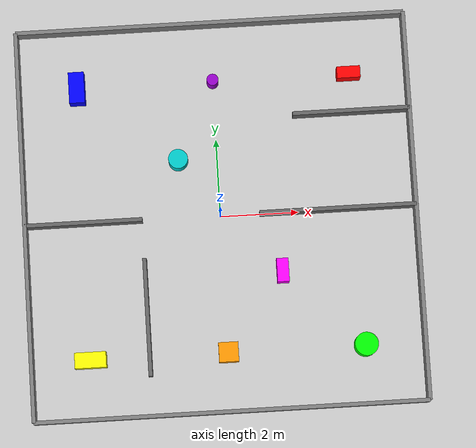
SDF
<?xml version="1.0"?>
<sdf version="1.6">
  <world name="slam_world">
    <physics type="ode">
      <max_step_size>0.001</max_step_size>
      <real_time_factor>1</real_time_factor>
    </physics>

    <include><uri>model://ground_plane</uri></include>
    <include><uri>model://sun</uri></include>

    <!-- 외곽 벽: 10 x 10 m                                           -->
    <model name="north_wall">
      <static>true</static>
      <pose>0 5.0 0.25 0 0 0</pose>
      <link name="link">
        <collision name="collision">
          <geometry><box><size>10.0 0.1 0.5</size></box></geometry>
        </collision>
        <visual name="visual">
          <geometry><box><size>10.0 0.1 0.5</size></box></geometry>
          <material><ambient>0.5 0.5 0.5 1</ambient></material>
        </visual>
      </link>
    </model>

    <model name="south_wall">
      <static>true</static>
      <pose>0 -5.0 0.25 0 0 0</pose>
      <link name="link">
        <collision name="collision">
          <geometry><box><size>10.0 0.1 0.5</size></box></geometry>
        </collision>
        <visual name="visual">
          <geometry><box><size>10.0 0.1 0.5</size></box></geometry>
          <material><ambient>0.5 0.5 0.5 1</ambient></material>
        </visual>
      </link>
    </model>

    <model name="east_wall">
      <static>true</static>
      <pose>5.0 0 0.25 0 0 0</pose>
      <link name="link">
        <collision name="collision">
          <geometry><box><size>0.1 10.0 0.5</size></box></geometry>
        </collision>
        <visual name="visual">
          <geometry><box><size>0.1 10.0 0.5</size></box></geometry>
          <material><ambient>0.5 0.5 0.5 1</ambient></material>
        </visual>
      </link>
    </model>

    <model name="west_wall">
      <static>true</static>
      <pose>-5.0 0 0.25 0 0 0</pose>
      <link name="link">
        <collision name="collision">
          <geometry><box><size>0.1 10.0 0.5</size></box></geometry>
        </collision>
        <visual name="visual">
          <geometry><box><size>0.1 10.0 0.5</size></box></geometry>
          <material><ambient>0.5 0.5 0.5 1</ambient></material>
        </visual>
      </link>
    </model>

    <!-- 낶부 칸막이: 중앙 가로벽 (중앙에 2m 통로)                      -->
    <model name="partition_left">
      <static>true</static>
      <pose>-3.5 0 0.25 0 0 0</pose>
      <link name="link">
        <collision name="collision">
          <geometry><box><size>3.0 0.1 0.5</size></box></geometry>
        </collision>
        <visual name="visual">
          <geometry><box><size>3.0 0.1 0.5</size></box></geometry>
          <material><ambient>0.4 0.4 0.4 1</ambient></material>
        </visual>
      </link>
    </model>

    <model name="partition_right">
      <static>true</static>
      <pose>3.0 0 0.25 0 0 0</pose>
      <link name="link">
        <collision name="collision">
          <geometry><box><size>4.0 0.1 0.5</size></box></geometry>
        </collision>
        <visual name="visual">
          <geometry><box><size>4.0 0.1 0.5</size></box></geometry>
          <material><ambient>0.4 0.4 0.4 1</ambient></material>
        </visual>
      </link>
    </model>

    <!-- 낶부 칸막이: 좌측 세로벽                                      -->
    <model name="room_divider_v">
      <static>true</static>
      <pose>-2.0 -2.5 0.25 0 0 0</pose>
      <link name="link">
        <collision name="collision">
          <geometry><box><size>0.1 3.0 0.5</size></box></geometry>
        </collision>
        <visual name="visual">
          <geometry><box><size>0.1 3.0 0.5</size></box></geometry>
          <material><ambient>0.4 0.4 0.4 1</ambient></material>
        </visual>
      </link>
    </model>

    <!-- 낶부 칸막이: 우측 상단 가로벽                                  -->
    <model name="room_divider_h">
      <static>true</static>
      <pose>3.5 2.5 0.25 0 0 0</pose>
      <link name="link">
        <collision name="collision">
          <geometry><box><size>3.0 0.1 0.5</size></box></geometry>
        </collision>
        <visual name="visual">
          <geometry><box><size>3.0 0.1 0.5</size></box></geometry>
          <material><ambient>0.4 0.4 0.4 1</ambient></material>
        </visual>
      </link>
    </model>

    <!-- 다양한 낶부 장애물 (박스 / 원통) — 비대칭 배치                 -->

    <model name="box_red">
      <pose>3.5 3.5 0.25 0 0 0</pose>
      <static>true</static>
      <link name="link">
        <collision name="collision">
          <geometry><box><size>0.6 0.3 0.5</size></box></geometry>
        </collision>
        <visual name="visual">
          <geometry><box><size>0.6 0.3 0.5</size></box></geometry>
          <material><ambient>1 0 0 1</ambient></material>
        </visual>
      </link>
    </model>

    <model name="box_blue">
      <pose>-3.5 3.5 0.25 0 0 0</pose>
      <static>true</static>
      <link name="link">
        <collision name="collision">
          <geometry><box><size>0.4 0.8 0.5</size></box></geometry>
        </collision>
        <visual name="visual">
          <geometry><box><size>0.4 0.8 0.5</size></box></geometry>
          <material><ambient>0 0 1 1</ambient></material>
        </visual>
      </link>
    </model>

    <model name="box_yellow">
      <pose>-3.5 -3.5 0.25 0 0 0</pose>
      <static>true</static>
      <link name="link">
        <collision name="collision">
          <geometry><box><size>0.8 0.4 0.5</size></box></geometry>
        </collision>
        <visual name="visual">
          <geometry><box><size>0.8 0.4 0.5</size></box></geometry>
          <material><ambient>1 1 0 1</ambient></material>
        </visual>
      </link>
    </model>

    <model name="box_orange">
      <pose>0 -3.5 0.25 0 0 0</pose>
      <static>true</static>
      <link name="link">
        <collision name="collision">
          <geometry><box><size>0.5 0.5 0.5</size></box></geometry>
        </collision>
        <visual name="visual">
          <geometry><box><size>0.5 0.5 0.5</size></box></geometry>
          <material><ambient>1 0.6 0 1</ambient></material>
        </visual>
      </link>
    </model>

    <model name="cyl_green">
      <pose>3.5 -3.5 0.25 0 0 0</pose>
      <static>true</static>
      <link name="link">
        <collision name="collision">
          <geometry><cylinder><radius>0.3</radius><length>0.5</length></cylinder></geometry>
        </collision>
        <visual name="visual">
          <geometry><cylinder><radius>0.3</radius><length>0.5</length></cylinder></geometry>
          <material><ambient>0 1 0 1</ambient></material>
        </visual>
      </link>
    </model>

    <model name="cyl_purple">
      <pose>0 3.5 0.25 0 0 0</pose>
      <static>true</static>
      <link name="link">
        <collision name="collision">
          <geometry><cylinder><radius>0.15</radius><length>0.5</length></cylinder></geometry>
        </collision>
        <visual name="visual">
          <geometry><cylinder><radius>0.15</radius><length>0.5</length></cylinder></geometry>
          <material><ambient>0.6 0 0.8 1</ambient></material>
        </visual>
      </link>
    </model>

    <model name="cyl_cyan">
      <pose>-1.0 1.5 0.25 0 0 0</pose>
      <static>true</static>
      <link name="link">
        <collision name="collision">
          <geometry><cylinder><radius>0.25</radius><length>0.5</length></cylinder></geometry>
        </collision>
        <visual name="visual">
          <geometry><cylinder><radius>0.25</radius><length>0.5</length></cylinder></geometry>
          <material><ambient>0 0.8 0.8 1</ambient></material>
        </visual>
      </link>
    </model>

    <model name="box_magenta">
      <pose>1.5 -1.5 0.25 0 0 0</pose>
      <static>true</static>
      <link name="link">
        <collision name="collision">
          <geometry><box><size>0.3 0.6 0.5</size></box></geometry>
        </collision>
        <visual name="visual">
          <geometry><box><size>0.3 0.6 0.5</size></box></geometry>
          <material><ambient>1 0 1 1</ambient></material>
        </visual>
      </link>
    </model>
  </world>
</sdf>
